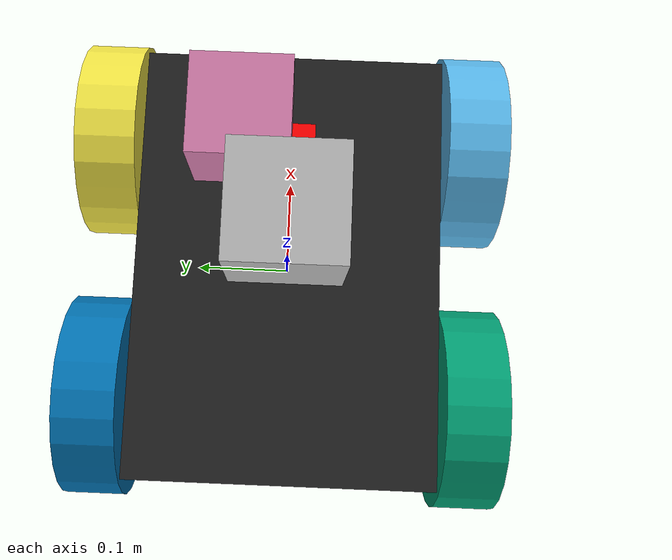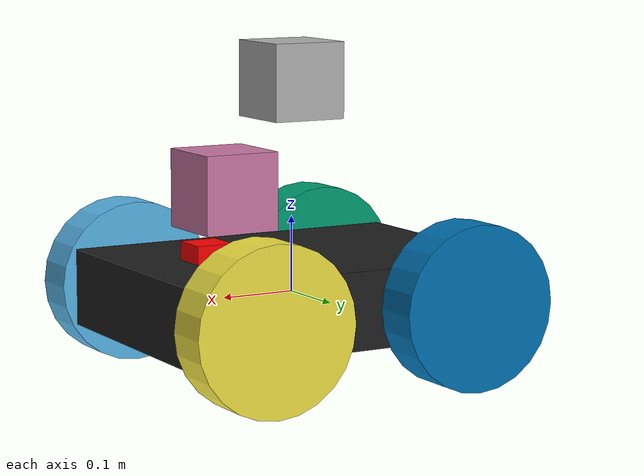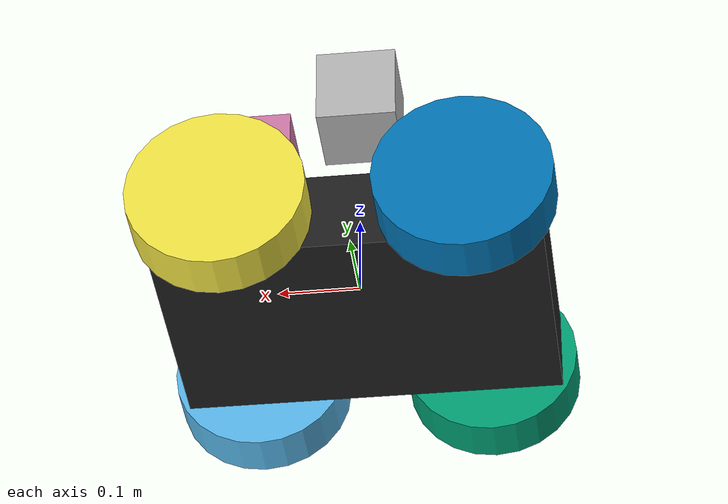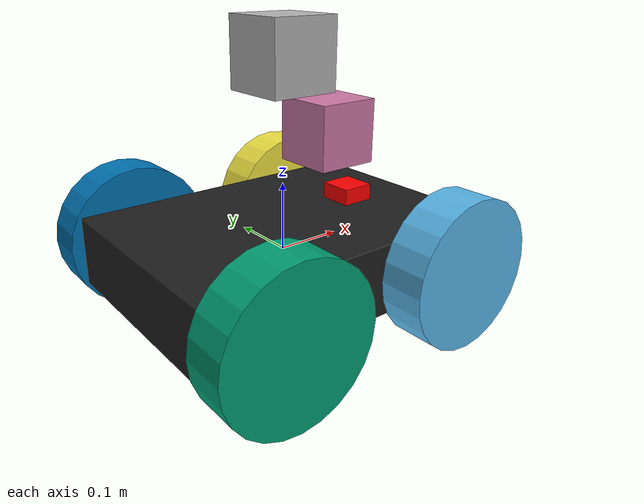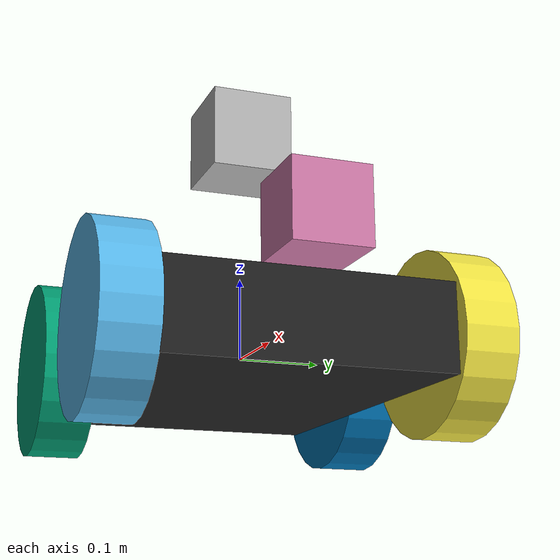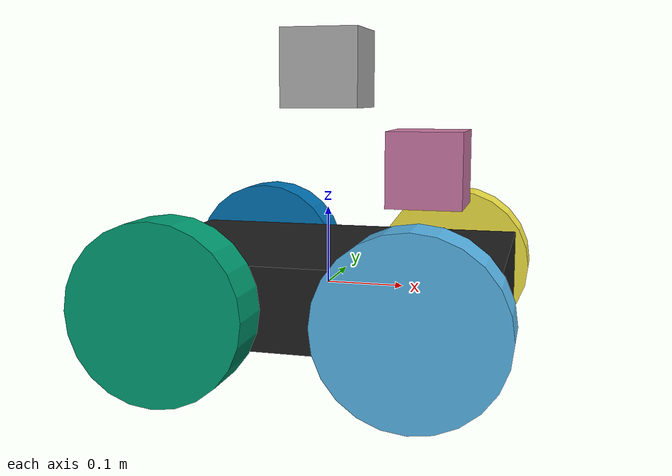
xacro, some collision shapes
<?xml version='1.0'?>
<robot xmlns:xacro="http://www.ros.org/wiki/xacro"
 	xmlns:sensor="http://playerstage.sourceforge.net/gazebo/xmlschema/#sensor"
    	xmlns:controller="http://playerstage.sourceforge.net/gazebo/xmlschema/#controller"
    	xmlns:interface="http://playerstage.sourceforge.net/gazebo/xmlschema/#interface"
	name="dd_robot">

<!-- Future Variables -->
		<!-- Length of Body -->
		<!-- Width of Body -->
		<!-- Height of Body -->

		<!-- Radius of Wheels -->
		<!-- Length of Wheels -->
    <xacro:property name="length_wheel" value=".0635" />
    <xacro:property name="radius_wheel" value=".10795" />

    <xacro:macro name="default_inertial" params="mass">
             <inertial>
                     <mass value="${mass}" />
                     <inertia ixx="1.0" ixy="0.0" ixz="0.0"
                              iyy="1.0" iyz="0.0"
                              izz="1.0" />
             </inertial>
    </xacro:macro>

		<!-- Locations -->

	<!-- Base Link -->

	<link name="base_link">
		<visual>
			<origin xyz="0 0 0" rpy="0 0 0" />
			<geometry>
				<box size=".4699 .3302 0.1016"/>
			</geometry>
      <material name="black"/>
		</visual>

		<collision>
			<origin xyz="0 0 0" rpy="0 0 0"/>
			<geometry>
				<box size = ".5 .4 .2"/>
			</geometry>

		</collision>

    <xacro:default_inertial mass="7.71"/>

	</link>

	<!-- r_fwheel (Right Front Wheel) -->

	<joint name="joint_r_fwheel" type= "continuous">
		<parent link="base_link"/>
		<child link="r_fwheel"/>
		<origin xyz=".14605 -.19685 0" rpy="0 0 0" />
		<axis xyz="0 1 0" />
	</joint>
  <link name= "r_fwheel">
    <visual>
      <origin xyz="0 0 0" rpy="1.5707 0 0" />
        <geometry>
          <cylinder length ="0.0635" radius="0.10795"/>
        </geometry>
    </visual>

    <collision>
      <origin xyz="0 0 0" rpy="1.5707 0 0"/>
      <geometry>
        <cylinder length ="0.0635" radius="0.10795"/>
      </geometry>
    </collision>

    <xacro:default_inertial mass="1"/>

  </link>

<!-- r_bwheel (Right Back Wheel) -->

	<joint name="joint_r_bwheel" type= "continuous">
		<parent link="base_link"/>
		<child link="r_bwheel"/>
		<origin xyz="-.14605 -.19685 0" rpy="0 0 0" />
		<axis xyz="0 1 0" />
	</joint>
  <link name= "r_bwheel">
      <visual>
      <origin xyz="0 0 0" rpy="1.5707 0 0" />
          <geometry>
              <cylinder length ="0.0635" radius="0.10795"/>
          </geometry>
    </visual>

      <collision>
      <origin xyz="0 0 0" rpy="1.5707 0 0"/>
      <geometry>
        <cylinder length ="0.0635" radius="0.10795"/>
      </geometry>
    </collision>

    <xacro:default_inertial mass="1"/>

  </link>

	<!-- l_fwheel (Left Front Wheel) -->

	<joint name="joint_l_fwheel" type= "continuous">

		<parent link="base_link"/>
		<child link="l_fwheel"/>
		<origin xyz=".14605 .19685 0" rpy="0 0 0" />
		<axis xyz="0 1 0" />
	</joint>
  <link name= "l_fwheel">
    	<visual>
			<origin xyz="0 0 0" rpy="1.5707 0 0" />
        	<geometry>
            	<cylinder length ="0.0635" radius="0.10795"/>
          </geometry>
		</visual>

			<collision>
				<origin xyz="0 0 0" rpy="1.5707 0 0"/>
				<geometry>
					<cylinder length ="0.0635" radius="0.10795"/>
				</geometry>
			</collision>

      <xacro:default_inertial mass="1"/>

	</link>

	<!-- l_bwheel (Left Back Wheel) -->

	<joint name="joint_l_bwheel" type= "continuous">
		<parent link="base_link"/>
		<child link="l_bwheel"/>
		<origin xyz="-.14605 .19685 0" rpy="0 0 0" />
		<axis xyz="0 1 0" />
	</joint>
  <link name= "l_bwheel">
    <visual>
			<origin xyz="0 0 0" rpy="1.5707 0 0" />
        	<geometry>
            	<cylinder length ="0.0635" radius="0.10795"/>
          </geometry>
		</visual>

			<collision>
				<origin xyz="0 0 0" rpy="1.5707 0 0"/>
				<geometry>
					<cylinder length ="0.0635" radius="0.10795"/>
				</geometry>
			</collision>

    <xacro:default_inertial mass="1"/>
    <inertial>
      <origin xyz="0 0 0" rpy="0 0 0"/>
    </inertial>

	</link>

	<!-- Camera joint -->
	  <joint name="camera_joint" type="fixed">
	    <axis xyz="0 1 0" />
	    <origin xyz="0.125 0 0.05" rpy="0 0 0"/>
	    <parent link="base_link"/>
	    <child link="camera_link"/>
	  </joint>

	  <!-- Camera -->
	  <link name="camera_link">
	    <collision>
	      <origin xyz="0 0 0" rpy="0 0 0"/>
	      <geometry>
  		<box size="0.05 0.05 0.05"/>
  	      </geometry>
  	    </collision>

  	    <visual>
  	      <origin xyz="0 0 0" rpy="0 0 0"/>
  	      <geometry>
  		<box size="0.05 0.05 0.05"/>
  	      </geometry>
  	      <material name="red">
  		<color rgba="1 0 0 1"/>
  	      </material>
  	    </visual>

  	    <inertial>
  	      <mass value="1e-5" />
  	      <origin xyz="0 0 0" rpy="0 0 0"/>
  	      <inertia ixx="1e-6" ixy="0" ixz="0" iyy="1e-6" iyz="0" izz="1e-6" />
  	    </inertial>
	  </link>

	  <!-- Hokuyo joint -->
	  <joint name="hokuyo_joint" type="fixed">
	    <origin xyz="0.125 0.05 0.15" rpy="0 0 0"/>
	    <parent link="base_link"/>
	    <axis xyz="0 1 0" />
	    <child link="hokuyo_link"/>
	  </joint>

	  <!-- Hokuyo Laser -->
	  <link name="hokuyo_link">
  	    <collision>
  	      <origin xyz="0 0 0" rpy="0 0 0"/>
  	      <geometry>
  		<box size="0.1 0.1 0.1"/>
  	      </geometry>
  	    </collision>

  	    <visual>
  	      <origin xyz="0 0 0" rpy="0 0 0"/>
  	      <geometry>
  	        <mesh filename="package://ros_robotics/sensors/hokuyo.dae"/>
  	      </geometry>
  	    </visual>

  	    <inertial>
  	      <mass value="1e-5" />
  	      <origin xyz="0 0 0" rpy="0 0 0"/>
  	      <inertia ixx="1e-6" ixy="0" ixz="0" iyy="1e-6" iyz="0" izz="1e-6" />
  	    </inertial>
	  </link>

<!-- GAZEBO ADDITIONS -->

	<gazebo reference="base_link">
		<material>Gazebo/DarkGrey</material>
	</gazebo>

<gazebo>
  <plugin name="skid_steer_drive_controller" filename="libgazebo_ros_skid_steer_drive.so">
    <updateRate>100.0</updateRate>
    <robotNamespace>/</robotNamespace>
    <leftFrontJoint>joint_l_fwheel</leftFrontJoint>
    <rightFrontJoint>joint_r_fwheel</rightFrontJoint>
    <leftRearJoint>joint_l_bwheel</leftRearJoint>
    <rightRearJoint>joint_r_bwheel</rightRearJoint>
    <wheelSeparation>.3556</wheelSeparation>
    <wheelDiameter>0.2159</wheelDiameter>
    <robotBaseFrame>base_link</robotBaseFrame>
    <torque>1</torque>
    <topicName>cmd_vel</topicName>
    <broadcastTF>1</broadcastTF>
  </plugin>
</gazebo>

<!-- Gazebo plugin for ROS control -->
<gazebo>
		<plugin name="gazebo_ros_control"
			filename="libgazebo_ros_control.so">
			<robotNamespace>/dd_robot</robotNamespace>
		</plugin>
</gazebo>

<!-- camera_link -->
 <gazebo reference="camera_link">
	 <mu1>0.2</mu1>
	 <mu2>0.2</mu2>
	 <material>Gazebo/Red</material>
 </gazebo>

 <!-- hokuyo -->
 <gazebo reference="hokuyo_link">
	 <sensor type="ray" name="head_hokuyo_sensor">
		 <pose>0 0 0 0 0 0</pose>
		 <visualize>false</visualize>
		 <update_rate>40</update_rate>
		 <ray>
			 <scan>
				 <horizontal>
					 <samples>720</samples>
					 <resolution>1</resolution>
					 <min_angle>-1.570796</min_angle>
					 <max_angle>1.570796</max_angle>
				 </horizontal>
			 </scan>
			 <range>
				 <min>0.10</min>
				 <max>30.0</max>
				 <resolution>0.01</resolution>
			 </range>
			 <noise>
				 <type>gaussian</type>
				 <mean>0.0</mean>
				 <stddev>0.01</stddev>
			 </noise>
		 </ray>
		 <plugin name="gazebo_ros_head_hokuyo_controller" filename="libgazebo_ros_laser.so">
			 <topicName>/robot/laser/scan</topicName>
			 <frameName>hokuyo_link</frameName>
		 </plugin>
	 </sensor>
 </gazebo>

 <!-- camera -->
 <gazebo reference="camera_link">
	 <sensor type="camera" name="camera1">
		 <update_rate>30.0</update_rate>
		 <camera name="head">
			 <horizontal_fov>1.3962634</horizontal_fov>
			 <image>
				 <width>800</width>
				 <height>800</height>
				 <format>R8G8B8</format>
			 </image>
			 <clip>
				 <near>0.02</near>
				 <far>300</far>
			 </clip>
			 <noise>
				 <type>gaussian</type>
				 <!-- Noise is sampled independently per pixel on each frame.
							That pixel's noise value is added to each of its color
							channels, which at that point lie in the range [0,1]. -->
				 <mean>0.0</mean>
				 <stddev>0.007</stddev>
			 </noise>
		 </camera>
		 <plugin name="camera_controller" filename="libgazebo_ros_camera.so">
			 <alwaysOn>true</alwaysOn>
			 <updateRate>0.0</updateRate>
			 <cameraName>robot/camera1</cameraName>
			 <imageTopicName>image_raw</imageTopicName>
			 <cameraInfoTopicName>camera_info</cameraInfoTopicName>
			 <frameName>camera_link</frameName>
			 <hackBaseline>0.07</hackBaseline>
			 <distortionK1>0.0</distortionK1>
			 <distortionK2>0.0</distortionK2>
			 <distortionK3>0.0</distortionK3>
			 <distortionT1>0.0</distortionT1>
			 <distortionT2>0.0</distortionT2>
		 </plugin>
	 </sensor>
 </gazebo>

<!-- IMU Sensor -->

<!-- IMU -->
<link name="imu_link">
  <inertial>
    <mass value="0.001"/>
    <origin rpy="0 0 0" xyz="0 0 0"/>
    <inertia ixx="0.0001" ixy="0" ixz="0" iyy="0.0001" iyz="0" izz="0.0001"/>
  </inertial>

  <visual>
    <origin rpy="0 0 0" xyz="0 0 0"/>
    <geometry>
      <box size="0.1 0.1 0.1"/>
    </geometry>
  </visual>

  <collision>
    <origin rpy="0 0 0" xyz="0 0 0"/>
    <geometry>
      <box size="0.1 0.1 0.1"/>
    </geometry>
  </collision>
</link>

<!-- IMU Joint -->
  <joint name="imu_joint" type="fixed">
    <axis xyz="1 0 0"/>
    <origin xyz="0 0 0.28"/>
    <parent link="base_link"/>
    <child link="imu_link"/>
  </joint>

<gazebo>
    <plugin name="imu_plugin" filename="libhector_gazebo_ros_imu.so">
          <updateRate>1000</updateRate>
          <bodyName>base_link</bodyName>
          <topicName>/imu</topicName>
          <serviceName>/imu/calibrate</serviceName>
          <accelOffset>0.0 0.0 0.0</accelOffset>
          <accelDrift>0.0 0.0 0.0</accelDrift>
          <accelDriftFrequency>0.0 0.0 0.0</accelDriftFrequency>
          <accelGaussianNoise>0.0 0.0 0.0</accelGaussianNoise>
          <rateOffset>0.0 0.0 0.0</rateOffset>
          <rateDrift>0.0 0.0 0.0</rateDrift>
          <rateDriftFrequency>0.0 0.0 0.0</rateDriftFrequency>
          <rateGaussianNoise>0.0 0.0 0.0</rateGaussianNoise>
          <headingOffset>0.0</headingOffset>
          <headingDrift>0.0</headingDrift>
          <headingDriftFrequency>0.0</headingDriftFrequency>
          <headingGaussianNoise>0.0</headingGaussianNoise>
          <rpyOffset>0.0 0.0 0.0</rpyOffset>
          <xyzOffset>0.0 0.0 0.0</xyzOffset>
          <gaussianNoise>0.0</gaussianNoise>
      </plugin>
  </gazebo>

 <!-- GPS Sensor -->
 <gazebo>
   <plugin name="novatel_gps_sim" filename="libhector_gazebo_ros_gps.so">
     <alwaysOn>1</alwaysOn>
     <updateRate>10.0</updateRate>
     <bodyName>base_link</bodyName>
     <topicName>fix</topicName>
     <velocityTopicName>fix_velocity</velocityTopicName>
     <drift>5.0 5.0 5.0</drift>
     <gaussianNoise>0.1 0.1 0.1</gaussianNoise>
     <velocityDrift>0 0 0</velocityDrift>
     <velocityGaussianNoise>0.1 0.1 0.1</velocityGaussianNoise>
   </plugin>
 </gazebo>

</robot>
